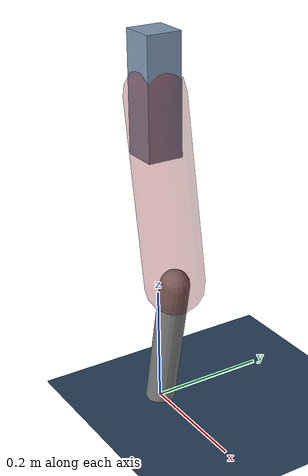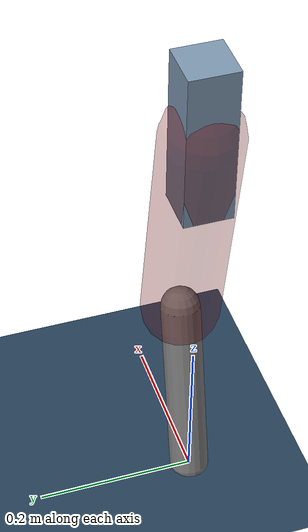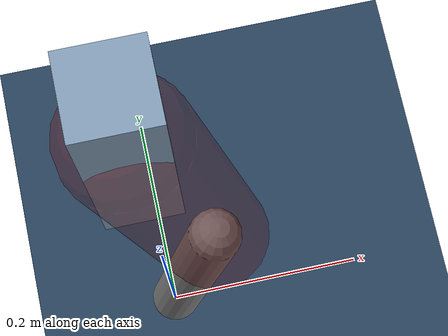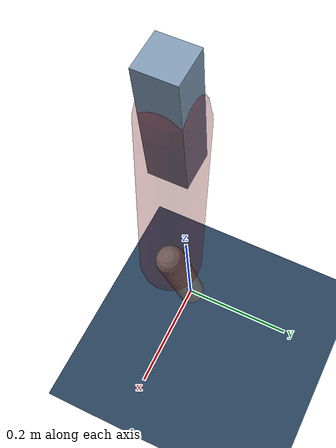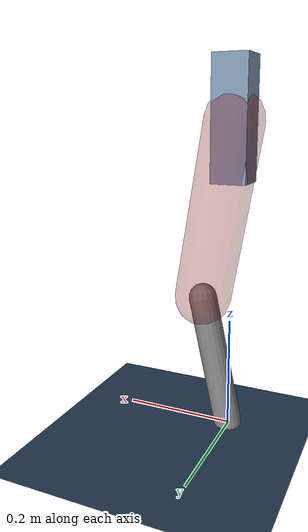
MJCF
<mujoco model="Hopper2D">
	<compiler inertiafromgeom="true" angle="radian" />
	<option timestep="0.001" integrator="implicit" cone="elliptic" solver="Newton" tolerance="1e-10" />

	<default>
		<geom contype="1" conaffinity="1" condim="3" friction="2 0.005 0.0001" solref="0.005 1" />
		<joint limited="true" damping="0.1" />
	</default>

	<asset>
		<texture name="skybox" type="skybox" builtin="gradient" rgb1=".4 .6 .8" rgb2="0 0 0" width="800" height="800" />
		<texture name="grid" type="2d" builtin="checker" rgb1=".1 .2 .3" rgb2=".2 .3 .4" width="300" height="300" mark="edge" markrgb=".2 .3 .4" />
		<material name="ground" texture="grid" texrepeat="1 1" texuniform="true" reflectance="0.1" />
		<material name="leg" rgba="0.5 0.6 0.7 1" />
	</asset>

	<worldbody>

		<geom name="floor" type="plane" size="5 5 0.25" material="ground" />

		<light directional="false" diffuse="0.8 0.8 0.8" specular="0.3 0.3 0.3" pos="0 0 2" dir="0 0 -1" />
		<light mode="targetbodycom" target="base" directional="false" diffuse="0.8 0.8 0.8" specular="0.3 0.3 0.3" pos="0 0 2" dir="0 0 -1" />

		<camera name="fixed" pos="0 -2 1" xyaxes="1 0 0 0 0 1" />
		<camera name="tracking" mode="trackcom" pos="0 -3 1" />

		<body name="root" pos="0 0 0.5438272197042677">
			<joint name="slide_x" type="slide" axis="1 0 0" range="-100 100" />
			<joint name="slide_z" type="slide" axis="0 0 1" range="0 10" />

			<body name="base" pos="0 0 0">
				<geom name="torso" type="box" size="0.03 0.03 0.1" mass="2.262" material="leg" />

				<body name="link1" pos="0 0 0" euler="0 1.4019320013890721 0">
					<joint type="hinge" axis="0 -1 0" pos="0 0 0" name="hinge1" limited="true" range="-3.14 3.14" stiffness="0" damping="0.1" />
					<geom name="thigh" type="capsule" fromto="0 0 0 0.3094555351584847 0 0" size="0.05" rgba="0.5 0 0 0.3" mass="1.0144299449279086" />

					<body name="link2" pos="0.3094555351584847 0 0" euler="0 0.3833279507671146 0">
						<joint type="hinge" axis="0 -1 0" pos="0 0 0" name="hinge2" limited="true" range="-3.14 3.14" stiffness="0" damping="0.1" />
						<geom name="shank" type="capsule" fromto="0 0 0 0.24437168454578312 0 0" size="0.025" mass="0.4378973476366265" />

					</body>
				</body>
			</body>
		</body>
	</worldbody>

	<actuator>
		<motor name="torque1" joint="hinge1" ctrlrange="-47.470877594302266 47.470877594302266" ctrllimited="true" gear="1" />
		<motor name="torque2" joint="hinge2" ctrlrange="-107.23013792857597 107.23013792857597" ctrllimited="true" gear="1" />
	</actuator>
</mujoco>
